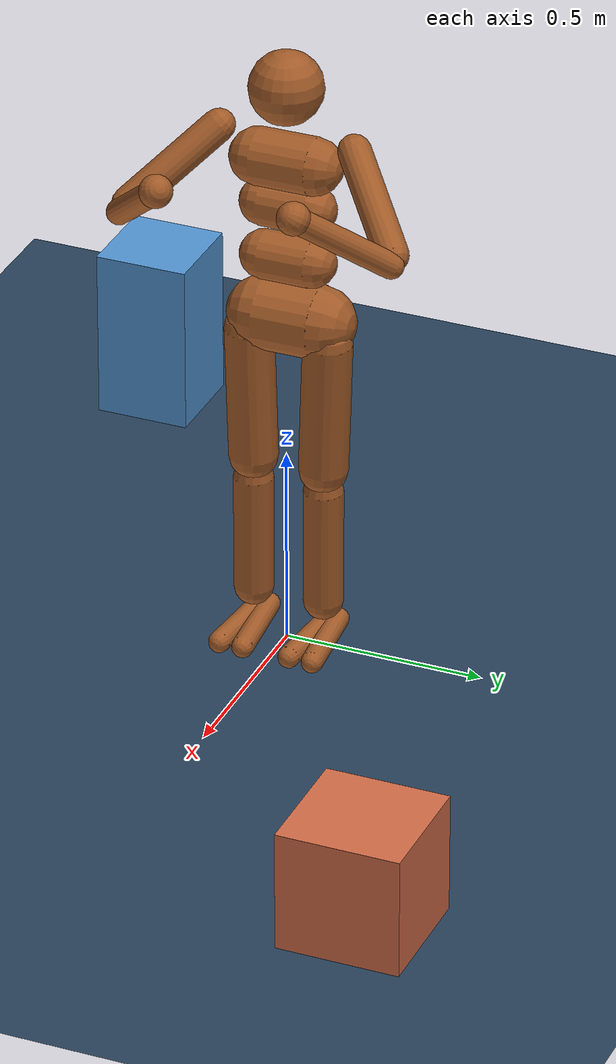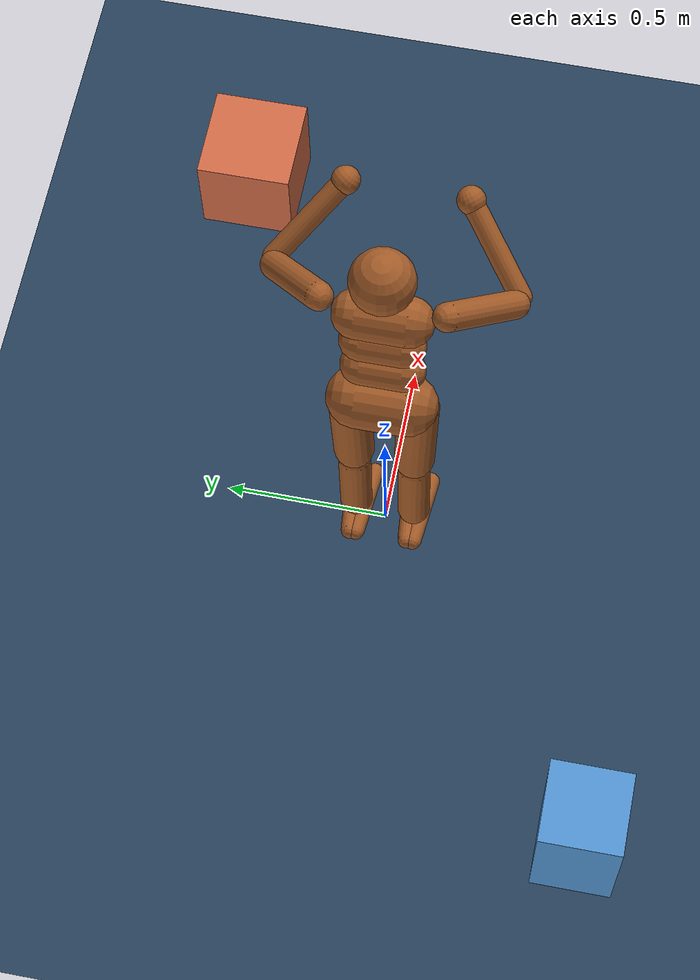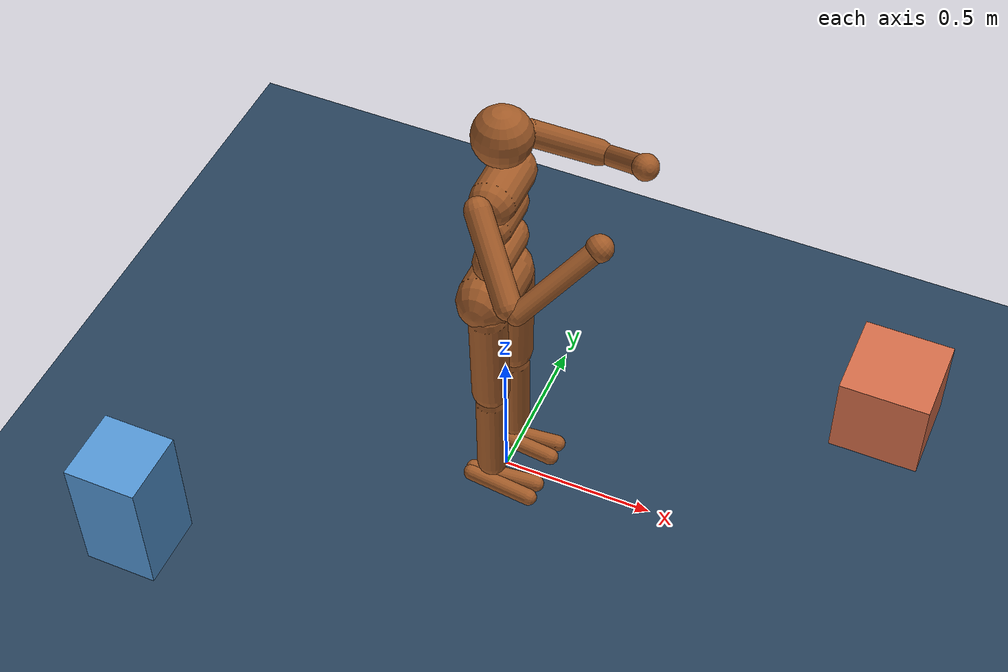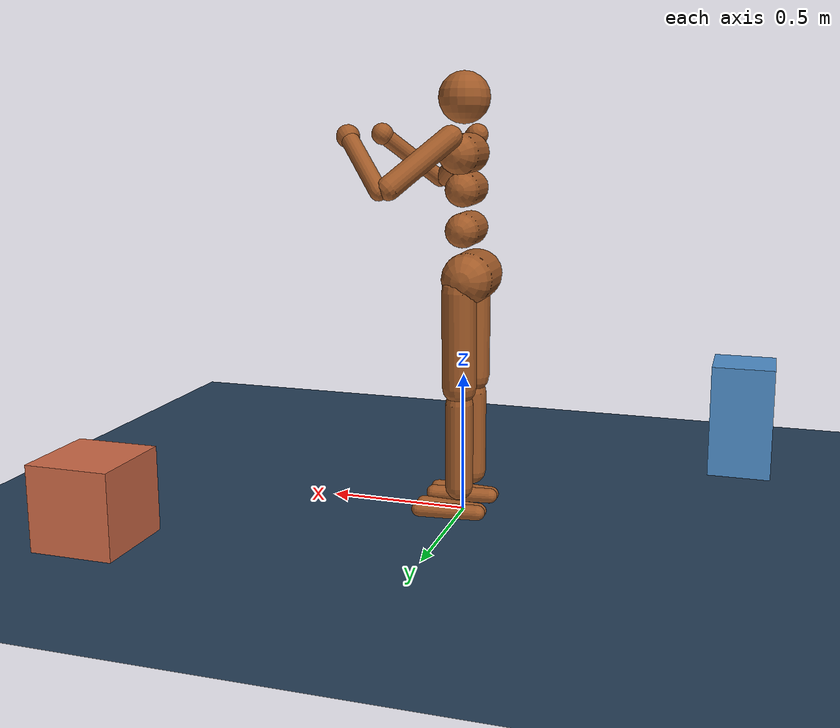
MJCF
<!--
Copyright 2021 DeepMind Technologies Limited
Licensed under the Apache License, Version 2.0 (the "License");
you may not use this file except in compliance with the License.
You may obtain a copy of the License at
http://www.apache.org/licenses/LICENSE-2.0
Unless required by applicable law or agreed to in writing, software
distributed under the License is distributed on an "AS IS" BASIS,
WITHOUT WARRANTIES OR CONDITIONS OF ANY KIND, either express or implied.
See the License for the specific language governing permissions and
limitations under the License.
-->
<mujoco model="Humanoid">
  <option timestep="0.005"/>

  <visual>
    <map force="0.1" zfar="30"/>
    <rgba haze="0.15 0.25 0.35 1"/>
    <global offwidth="2560" offheight="1440" elevation="-20" azimuth="120"/>
  </visual>

  <statistic center="0 0 0.7"/>

  <asset>
    <texture type="skybox" builtin="gradient" rgb1=".3 .5 .7" rgb2="0 0 0" width="32" height="512"/>
    <texture name="body" type="cube" builtin="flat" mark="cross" width="128" height="128" rgb1="0.8 0.6 0.4" rgb2="0.8 0.6 0.4" markrgb="1 1 1"/>
    <material name="body" texture="body" texuniform="true" rgba="0.8 0.6 .4 1"/>
    <texture name="grid" type="2d" builtin="checker" width="512" height="512" rgb1=".1 .2 .3" rgb2=".2 .3 .4"/>
    <material name="grid" texture="grid" texrepeat="1 1" texuniform="true" reflectance=".2"/>
  </asset>

  <default>
    <motor ctrlrange="-1 1" ctrllimited="true"/>
    <default class="body">

      <!-- geoms -->
      <geom type="capsule" condim="1" friction=".7" solimp=".9 .99 .003" solref=".015 1" material="body" group="1"/>
      <default class="thigh">
        <geom size=".06"/>
      </default>
      <default class="shin">
        <geom fromto="0 0 0 0 0 -.3"  size=".049"/>
      </default>
      <default class="foot">
        <geom size=".027"/>
        <default class="foot1">
          <geom fromto="-.07 -.01 0 .14 -.03 0"/>
        </default>
        <default class="foot2">
          <geom fromto="-.07 .01 0 .14  .03 0"/>
        </default>
      </default>
      <default class="arm_upper">
        <geom size=".04"/>
      </default>
      <default class="arm_lower">
        <geom size=".031"/>
      </default>
      <default class="hand">
        <geom type="sphere" size=".04"/>
      </default>

      <!-- joints -->
      <joint type="hinge" damping=".2" stiffness="1" armature=".01" limited="true" solimplimit="0 .99 .01"/>
      <default class="joint_big">
        <joint damping="5" stiffness="10"/>
        <default class="hip_x">
          <joint range="-30 10"/>
        </default>
        <default class="hip_z">
          <joint range="-60 35"/>
        </default>
        <default class="hip_y">
          <joint axis="0 1 0" range="-150 20"/>
        </default>
        <default class="joint_big_stiff">
          <joint stiffness="20"/>
        </default>
      </default>
      <default class="knee">
        <joint pos="0 0 .02" axis="0 -1 0" range="-160 2"/>
      </default>
      <default class="ankle">
        <joint range="-50 50"/>
        <default class="ankle_y">
          <joint pos="0 0 .08" axis="0 1 0" stiffness="6"/>
        </default>
        <default class="ankle_x">
          <joint pos="0 0 .04" stiffness="3"/>
        </default>
      </default>
      <default class="shoulder">
        <joint range="-85 60"/>
      </default>
      <default class="elbow">
        <joint range="-100 50" stiffness="0"/>
      </default>
    </default>
  </default>

  <worldbody>
    <geom name="floor" size="0 0 .05" type="plane" material="grid" condim="3"/>
    <light name="spotlight" mode="targetbodycom" target="torso" diffuse=".8 .8 .8" specular="0.3 0.3 0.3" pos="0 -6 4" cutoff="30"/>
    <geom name="scene_cube_a" type="box" size="0.15 0.15 0.15" pos="1.1 0.65 0.15" rgba="0.82 0.42 0.28 1" condim="3"/>
    <geom name="scene_cube_b" type="box" size="0.12 0.12 0.22" pos="-0.95 -0.75 0.22" rgba="0.32 0.58 0.82 1" condim="3"/>
    <body name="torso" pos="0 0 1.282" childclass="body">
      <light name="top" pos="0 0 2" mode="trackcom"/>
      <camera name="back" pos="-3 0 1" xyaxes="0 -1 0 1 0 2" mode="trackcom"/>
      <camera name="side" pos="0 -3 1" xyaxes="1 0 0 0 1 2" mode="trackcom"/>
      <freejoint name="root"/>
      <geom name="torso" fromto="0 -.07 0 0 .07 0" size=".07"/>
      <geom name="waist_upper" fromto="-.01 -.06 -.12 -.01 .06 -.12" size=".06"/>
      <body name="head" pos="0 0 .19">
        <geom name="head" type="sphere" size=".09"/>
        <site name="head_gyro_mount" pos="0 0 0" size="0.01"/>
        <camera name="egocentric" pos=".09 0 0" xyaxes="0 -1 0 .1 0 1" fovy="80"/>

      </body>
      <body name="waist_lower" pos="-.01 0 -.26">
        <geom name="waist_lower" fromto="0 -.06 0 0 .06 0" size=".06"/>
        <joint name="abdomen_z" pos="0 0 .065" axis="0 0 1" range="-45 45" class="joint_big_stiff"/>
        <joint name="abdomen_y" pos="0 0 .065" axis="0 1 0" range="-75 30" class="joint_big"/>
        <body name="pelvis" pos="0 0 -.165">
          <joint name="abdomen_x" pos="0 0 .1" axis="1 0 0" range="-35 35" class="joint_big"/>
          <geom name="butt" fromto="-.02 -.07 0 -.02 .07 0" size=".09"/>
          <body name="thigh_right" pos="0 -.1 -.04">
            <joint name="hip_x_right" axis="1 0 0" class="hip_x"/>
            <joint name="hip_z_right" axis="0 0 1" class="hip_z"/>
            <joint name="hip_y_right" class="hip_y"/>
            <geom name="thigh_right" fromto="0 0 0 0 .01 -.34" class="thigh"/>
            <body name="shin_right" pos="0 .01 -.4">
              <joint name="knee_right" class="knee"/>
              <geom name="shin_right" class="shin"/>
              <body name="foot_right" pos="0 0 -.39">
                <camera name="foot" pos="1 0 0" xyaxes="1 0 0 0 1 2" mode="trackcom"/> <!-- can remove -->
                <joint name="ankle_y_right" class="ankle_y"/>
                <joint name="ankle_x_right" class="ankle_x" axis="1 0 .5"/>
                <geom name="foot1_right" class="foot1"/>
                <geom name="foot2_right" class="foot2"/>
              </body>
            </body>
          </body>
          <body name="thigh_left" pos="0 .1 -.04">
            <joint name="hip_x_left" axis="-1 0 0" class="hip_x"/>
            <joint name="hip_z_left" axis="0 0 -1" class="hip_z"/>
            <joint name="hip_y_left" class="hip_y"/>
            <geom name="thigh_left" fromto="0 0 0 0 -.01 -.34" class="thigh"/>
            <body name="shin_left" pos="0 -.01 -.4">
              <joint name="knee_left" class="knee"/>
              <geom name="shin_left" fromto="0 0 0 0 0 -.3" class="shin"/>
              <body name="foot_left" pos="0 0 -.39">
                <joint name="ankle_y_left" class="ankle_y"/>
                <joint name="ankle_x_left" class="ankle_x" axis="-1 0 -.5"/>
                <geom name="foot1_left" class="foot1"/>
                <geom name="foot2_left" class="foot2"/>
              </body>
            </body>
          </body>
        </body>
      </body>
      <body name="upper_arm_right" pos="0 -.17 .06">
        <joint name="shoulder1_right" axis="2 1 1"  class="shoulder"/>
        <joint name="shoulder2_right" axis="0 -1 1" class="shoulder"/>
        <geom name="upper_arm_right" fromto="0 0 0 .16 -.16 -.16" class="arm_upper"/>
        <body name="lower_arm_right" pos=".18 -.18 -.18">
          <joint name="elbow_right" axis="0 -1 1" class="elbow"/>
          <geom name="lower_arm_right" fromto=".01 .01 .01 .17 .17 .17" class="arm_lower"/>
          <body name="hand_right" pos=".18 .18 .18">
            <geom name="hand_right" zaxis="1 1 1" class="hand"/>
          </body>
        </body>
      </body>
      <body name="upper_arm_left" pos="0 .17 .06">
        <joint name="shoulder1_left" axis="-2 1 -1" class="shoulder"/>
        <joint name="shoulder2_left" axis="0 -1 -1"  class="shoulder"/>
        <geom name="upper_arm_left" fromto="0 0 0 .16 .16 -.16" class="arm_upper"/>
        <body name="lower_arm_left" pos=".18 .18 -.18">
          <joint name="elbow_left" axis="0 -1 -1" class="elbow"/>
          <geom name="lower_arm_left" fromto=".01 -.01 .01 .17 -.17 .17" class="arm_lower"/>
          <body name="hand_left" pos=".18 -.18 .18">
            <geom name="hand_left" zaxis="1 -1 1" class="hand"/>
          </body>
        </body>
      </body>
    </body>
  </worldbody>

  <contact>
    <exclude body1="waist_lower" body2="thigh_right"/>
    <exclude body1="waist_lower" body2="thigh_left"/>
  </contact>

  <tendon>
    <fixed name="hamstring_right" limited="true" range="-0.3 2">
      <joint joint="hip_y_right" coef=".5"/>
      <joint joint="knee_right" coef="-.5"/>
    </fixed>
    <fixed name="hamstring_left" limited="true" range="-0.3 2">
      <joint joint="hip_y_left" coef=".5"/>
      <joint joint="knee_left" coef="-.5"/>
    </fixed>
  </tendon>

  <actuator>
    <position joint="abdomen_z" name="abdomen_z" ctrlrange="-0.578 0.794" kp="50"/>
    <position joint="abdomen_y" name="abdomen_y" ctrlrange="-0.509 0.531" kp="50"/>
    <position joint="abdomen_x" name="abdomen_x" ctrlrange="-0.619 0.619" kp="50"/>
    <position joint="hip_x_right" name="hip_x_right" ctrlrange="-0.533 0.162" kp="50"/>
    <position joint="hip_z_right" name="hip_z_right" ctrlrange="-0.567 0.621" kp="50"/>
    <position joint="hip_y_right" name="hip_y_right" ctrlrange="-2.63 0.358" kp="50"/>
    <position joint="knee_right" name="knee_right" ctrlrange="-2.8 0.0443" kp="50"/>
    <position joint="ankle_y_right" name="ankle_y_right" ctrlrange="-0.882 0.882" kp="50"/>
    <position joint="ankle_x_right" name="ankle_x_right" ctrlrange="-0.883 0.882" kp="50"/>
    <position joint="hip_x_left" name="hip_x_left" ctrlrange="-0.5 0.132" kp="50"/>
    <position joint="hip_z_left" name="hip_z_left" ctrlrange="-1.06 0.621" kp="50"/>
    <position joint="hip_y_left" name="hip_y_left" ctrlrange="-2.63 0.358" kp="50"/>
    <position joint="knee_left" name="knee_left" ctrlrange="-2.8 0.0443" kp="50"/>
    <position joint="ankle_y_left" name="ankle_y_left" ctrlrange="-0.882 0.882" kp="50"/>
    <position joint="ankle_x_left" name="ankle_x_left" ctrlrange="-0.882 0.882" kp="50"/>
    <position joint="shoulder1_right" name="shoulder1_right" ctrlrange="-1.49 1.05" kp="50"/>
    <position joint="shoulder2_right" name="shoulder2_right" ctrlrange="-1.49 0.835" kp="50"/>
    <position joint="elbow_right" name="elbow_right" ctrlrange="-1.75 0.882" kp="50"/>
    <position joint="shoulder1_left" name="shoulder1_left" ctrlrange="-1.49 1.05" kp="50"/>
    <position joint="shoulder2_left" name="shoulder2_left" ctrlrange="-1.49 1.06" kp="50"/>
    <position joint="elbow_left" name="elbow_left" ctrlrange="-1.75 0.882" kp="50"/>
  </actuator>

  <sensor>
    <!-- Define gyro sensor attached to the mounting site (First 4 values in data.sensor) -->
    <framequat objtype="site" objname="head_gyro_mount" name="head_gyro"/>

    <!-- Next 3 values in data.sensor -->
    <distance cutoff="10" name="waist_elevation" geom1="waist_lower" geom2="floor"/>
    <distance cutoff="10" name="upper_arm_left_elevation" geom1="upper_arm_left" geom2="floor"/>
    <distance cutoff="10" name="upper_arm_right_elevation" geom1="upper_arm_right" geom2="floor"/>

    <rangefinder name="head_camera" site="head_gyro_mount"/>
  </sensor>

  <keyframe>
    <!--
    The values below are split into rows for readibility:
      torso position
      torso orientation
      spinal
      right leg
      left leg
      arms
    -->
    <key name="squat"
         qpos="0 0 0.596
               0.988015 0 0.154359 0
               0 0.4 0
               -0.25 -0.5 -2.5 -2.65 -0.8 0.56
               -0.25 -0.5 -2.5 -2.65 -0.8 0.56
               0 0 0 0 0 0"/>
    <key name="stand_on_left_leg"
         qpos="0 0 1.21948
               0.971588 -0.179973 0.135318 -0.0729076
               -0.0516 -0.202 0.23
               -0.24 -0.007 -0.34 -1.76 -0.466 -0.0415
               -0.08 -0.01 -0.37 -0.685 -0.35 -0.09
               0.109 -0.067 -0.7 -0.05 0.12 0.16"/>
    <key name="prone"
         qpos="0.4 0 0.0757706
               0.7325 0 0.680767 0
               0 0.0729 0
               0.0077 0.0019 -0.026 -0.351 -0.27 0
               0.0077 0.0019 -0.026 -0.351 -0.27 0
               0.56 -0.62 -1.752
               0.56 -0.62 -1.752"/>
    <key name="supine"
         qpos="-0.4 0 0.08122
               0.722788 0 -0.69107 0
               0 -0.25 0
               0.0182 0.0142 0.3 0.042 -0.44 -0.02
               0.0182 0.0142 0.3 0.042 -0.44 -0.02
               0.186 -0.73 -1.73
               0.186 -0.73 -1.73"/>
    <key name="stand_natural"
         qpos='-0.000221556 9.27477e-20 1.28189
                1 -2.44651e-19 0.000716965 -3.55816e-20
                2.78228e-20 -0.00189513 7.13431e-19
                9.87246e-06 3.8581e-05 -0.000101538
                -0.000152809 0.000148729 -0.000103861
                9.87246e-06 3.8581e-05 -0.000101538
                -0.000152809 0.000148729 -0.000103861 0.798197
                -0.493775 -1.75023 0.798197 -0.493775 -1.75023'/>
    <key name="stand_default"
          qpos='0.0333961 -6.63629e-19 1.28138
                0.99984 4.41274e-19 0.0178773
                -4.29244e-19 9.34828e-19 -0.00143925
                -1.58724e-18 1.79502e-05 7.24027e-05
                -0.000461044 0.0206288 -0.0138963 -0.000191145
                1.79502e-05 7.24027e-05 -0.000461044 0.0206288
                -0.0138963 -0.000191145 -0.0154913 0.0195956
                -0.0355085 -0.0154913 0.0195956 -0.0355085'/>
  </keyframe>
</mujoco>
